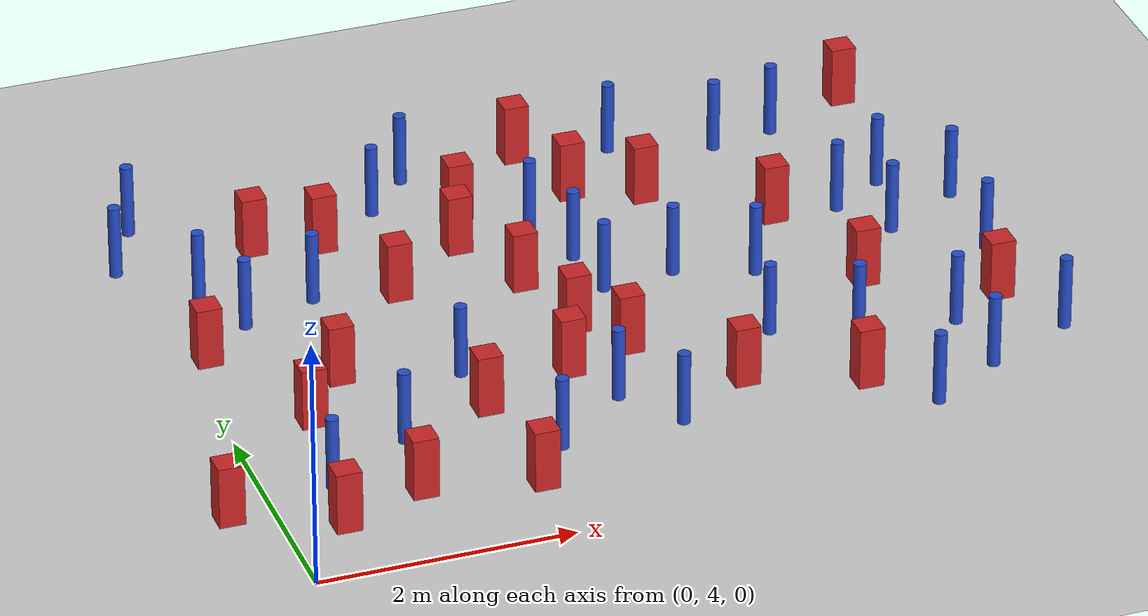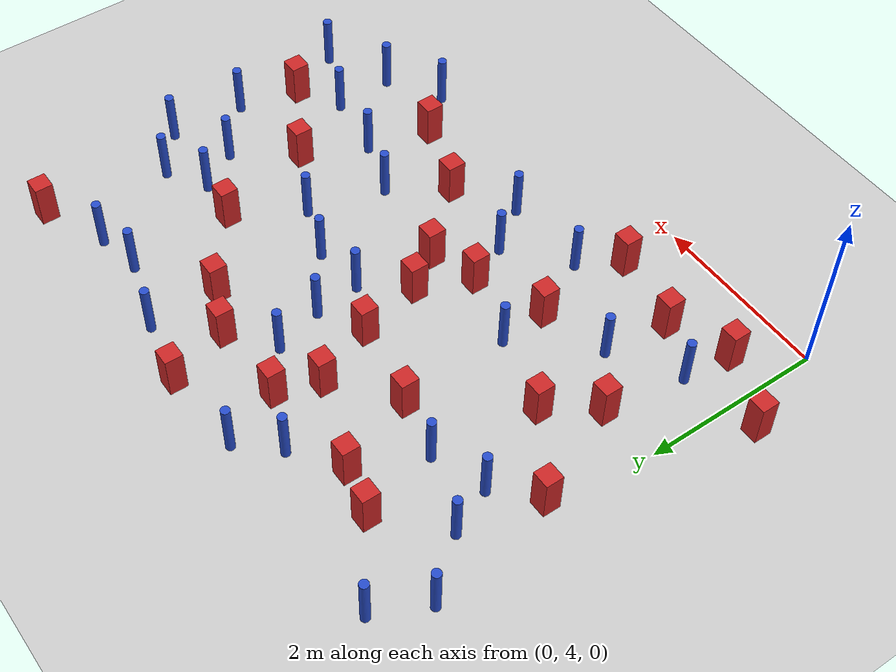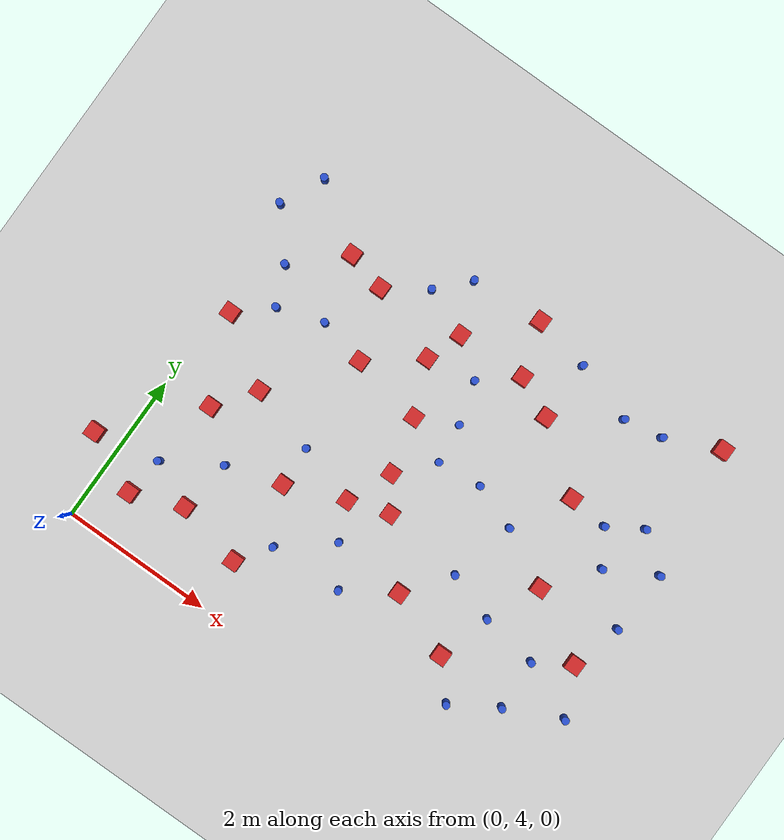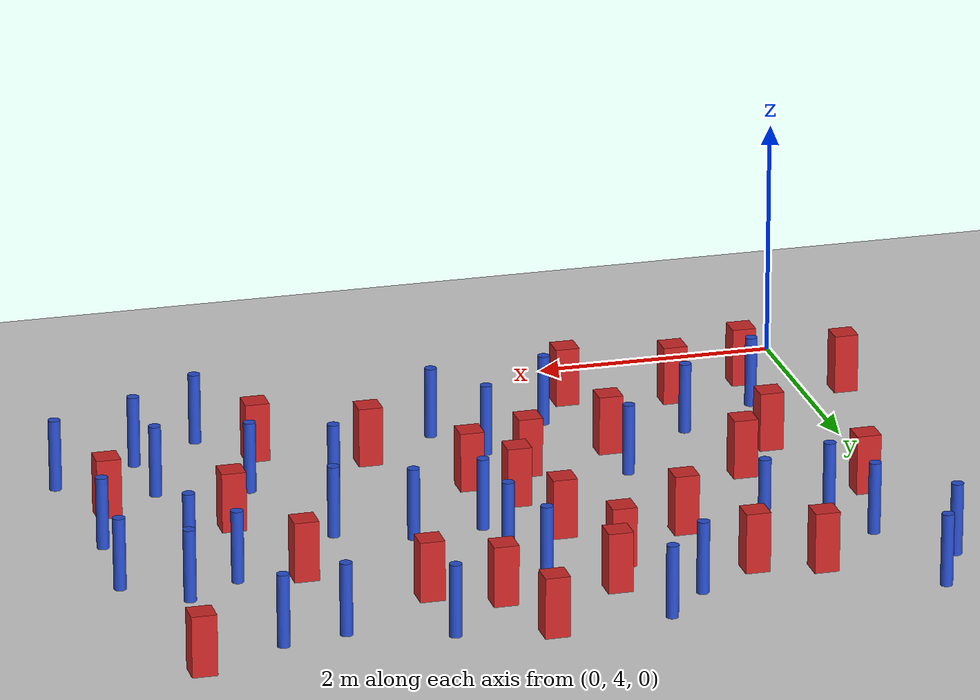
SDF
<sdf version="1.6">
 <world name="default">
  <model name="ground_plane">
   <static>1</static>
   <link name="link">
    <collision name="collision">
     <geometry><plane><normal>0 0 1</normal><size>100 100</size></plane></geometry>
     <surface><friction><ode><mu>100</mu><mu2>50</mu2></ode></friction></surface>
    </collision>
    <visual name="visual">
     <cast_shadows>0</cast_shadows>
     <geometry><plane><normal>0 0 1</normal><size>100 100</size></plane></geometry>
     <material>
      <ambient>1.0 1.0 1.0 1.0</ambient>
      <diffuse>0.8 0.8 0.8 1.0</diffuse>
      <specular>0.01 0.01 0.01 1.000000</specular>
     </material>
    </visual>
   </link>
  </model>
  <model name="pole_obstacle5">
   <static>true</static>
   <pose>5.40202079288 9.03838742741 -3.09024884793e-07 -7.19054271912e-07 -2.1131507513e-07 -1.93935509261e-07</pose>
   <link name="link">
    <pose>0 0 0.3 0 -0 0</pose>
    <inertial>
     <mass>1</mass>
     <inertia><ixx>0.145833</ixx><ixy>0</ixy><ixz>0</ixz><iyy>0.145833</iyy><iyz>0</iyz><izz>0.125</izz></inertia>
    </inertial>
    <collision name="collision">
     <geometry><cylinder><radius>0.05</radius><length>.6</length></cylinder></geometry>
    </collision>
    <visual name="visual">
     <geometry><cylinder><radius>0.05</radius><length>.6</length></cylinder></geometry>
     <material>
      <script><name>Gazebo/Blue</name><uri>file://media/materials/scripts/gazebo.material</uri></script>
     </material>
    </visual>
   </link>
  </model>
  <model name="square_post_obstacle2">
   <static>true</static>
   <pose>2.76552390389 7.45697668881 -4.36207812815e-07 3.75137919937e-06 9.77721102514e-07 2.47381364184e-05</pose>
   <link name="link">
    <pose>0 0 0.25 0 -0 0</pose>
    <inertial>
     <mass>100</mass>
     <inertia>
      <ixx>0.166667</ixx>
      <ixy>0</ixy>
      <ixz>0</ixz>
      <iyy>0.166667</iyy>
      <iyz>0</iyz>
      <izz>0.166667</izz>
     </inertia>
    </inertial>
    <collision name="collision"><geometry><box><size>.2 .2 .5</size></box></geometry></collision>
    <visual name="visual">
     <geometry><box><size>.2 .2 .5</size></box></geometry>
     <material>
      <script><name>Gazebo/Red</name><uri>file://media/materials/scripts/gazebo.material</uri></script>
     </material>
    </visual>
   </link>
  </model>
  <model name="pole_obstacle17">
   <static>true</static>
   <pose>5.89942514941 7.99826392989 -3.09024884793e-07 -7.19054271912e-07 -2.11315075134e-07 -1.93935509264e-07</pose>
   <link name="link">
    <pose>0 0 0.3 0 -0 0</pose>
    <inertial>
     <mass>1</mass>
     <inertia><ixx>0.145833</ixx><ixy>0</ixy><ixz>0</ixz><iyy>0.145833</iyy><iyz>0</iyz><izz>0.125</izz></inertia>
    </inertial>
    <collision name="collision">
     <geometry><cylinder><radius>0.05</radius><length>.6</length></cylinder></geometry>
    </collision>
    <visual name="visual">
     <geometry><cylinder><radius>0.05</radius><length>.6</length></cylinder></geometry>
     <material>
      <script><name>Gazebo/Blue</name><uri>file://media/materials/scripts/gazebo.material</uri></script>
     </material>
    </visual>
   </link>
  </model>
  <model name="pole_obstacle29">
   <static>true</static>
   <pose>4.88797072399 8.94769967864 -3.09024884793e-07 -7.19054271912e-07 -2.1131507513e-07 -1.93935509261e-07</pose>
   <link name="link">
    <pose>0 0 0.3 0 -0 0</pose>
    <inertial>
     <mass>1</mass>
     <inertia><ixx>0.145833</ixx><ixy>0</ixy><ixz>0</ixz><iyy>0.145833</iyy><iyz>0</iyz><izz>0.125</izz></inertia>
    </inertial>
    <collision name="collision">
     <geometry><cylinder><radius>0.05</radius><length>.6</length></cylinder></geometry>
    </collision>
    <visual name="visual">
     <geometry><cylinder><radius>0.05</radius><length>.6</length></cylinder></geometry>
     <material>
      <script><name>Gazebo/Blue</name><uri>file://media/materials/scripts/gazebo.material</uri></script>
     </material>
    </visual>
   </link>
  </model>
  <model name="square_post_obstacle22">
   <static>true</static>
   <pose>-0.342870952703 5.01672685426 -4.36207812815e-07 3.75137919937e-06 9.77721102514e-07 2.47381364184e-05</pose>
   <link name="link">
    <pose>0 0 0.25 0 -0 0</pose>
    <inertial>
     <mass>100</mass>
     <inertia>
      <ixx>0.166667</ixx>
      <ixy>0</ixy>
      <ixz>0</ixz>
      <iyy>0.166667</iyy>
      <iyz>0</iyz>
      <izz>0.166667</izz>
     </inertia>
    </inertial>
    <collision name="collision"><geometry><box><size>.2 .2 .5</size></box></geometry></collision>
    <visual name="visual">
     <geometry><box><size>.2 .2 .5</size></box></geometry>
     <material>
      <script><name>Gazebo/Red</name><uri>file://media/materials/scripts/gazebo.material</uri></script>
     </material>
    </visual>
   </link>
  </model>
  <model name="square_post_obstacle23">
   <static>true</static>
   <pose>1.98374936314 4.71340859326 -4.36207812815e-07 3.75137919937e-06 9.77721102514e-07 2.47381364184e-05</pose>
   <link name="link">
    <pose>0 0 0.25 0 -0 0</pose>
    <inertial>
     <mass>100</mass>
     <inertia>
      <ixx>0.166667</ixx>
      <ixy>0</ixy>
      <ixz>0</ixz>
      <iyy>0.166667</iyy>
      <iyz>0</iyz>
      <izz>0.166667</izz>
     </inertia>
    </inertial>
    <collision name="collision"><geometry><box><size>.2 .2 .5</size></box></geometry></collision>
    <visual name="visual">
     <geometry><box><size>.2 .2 .5</size></box></geometry>
     <material>
      <script><name>Gazebo/Red</name><uri>file://media/materials/scripts/gazebo.material</uri></script>
     </material>
    </visual>
   </link>
  </model>
  <model name="pole_obstacle32">
   <static>true</static>
   <pose>2.90803984438 5.65875958185 -3.09024884793e-07 -7.19054271912e-07 -2.11315075134e-07 -1.93935509266e-07</pose>
   <link name="link">
    <pose>0 0 0.3 0 -0 0</pose>
    <inertial>
     <mass>1</mass>
     <inertia><ixx>0.145833</ixx><ixy>0</ixy><ixz>0</ixz><iyy>0.145833</iyy><iyz>0</iyz><izz>0.125</izz></inertia>
    </inertial>
    <collision name="collision">
     <geometry><cylinder><radius>0.05</radius><length>.6</length></cylinder></geometry>
    </collision>
    <visual name="visual">
     <geometry><cylinder><radius>0.05</radius><length>.6</length></cylinder></geometry>
     <material>
      <script><name>Gazebo/Blue</name><uri>file://media/materials/scripts/gazebo.material</uri></script>
     </material>
    </visual>
   </link>
  </model>
  <model name="square_post_obstacle29">
   <static>true</static>
   <pose>3.34498067184 9.33578121504 -4.36207812815e-07 3.75137919937e-06 9.77721102514e-07 2.47381364184e-05</pose>
   <link name="link">
    <pose>0 0 0.25 0 -0 0</pose>
    <inertial>
     <mass>100</mass>
     <inertia>
      <ixx>0.166667</ixx>
      <ixy>0</ixy>
      <ixz>0</ixz>
      <iyy>0.166667</iyy>
      <iyz>0</iyz>
      <izz>0.166667</izz>
     </inertia>
    </inertial>
    <collision name="collision"><geometry><box><size>.2 .2 .5</size></box></geometry></collision>
    <visual name="visual">
     <geometry><box><size>.2 .2 .5</size></box></geometry>
     <material>
      <script><name>Gazebo/Red</name><uri>file://media/materials/scripts/gazebo.material</uri></script>
     </material>
    </visual>
   </link>
  </model>
  <model name="pole_obstacle35">
   <static>true</static>
   <pose>4.30914920771 6.16685141529 -3.09024884793e-07 -7.19054271911e-07 -2.1131507516e-07 -1.93935509277e-07</pose>
   <link name="link">
    <pose>0 0 0.3 0 -0 0</pose>
    <inertial>
     <mass>1</mass>
     <inertia><ixx>0.145833</ixx><ixy>0</ixy><ixz>0</ixz><iyy>0.145833</iyy><iyz>0</iyz><izz>0.125</izz></inertia>
    </inertial>
    <collision name="collision">
     <geometry><cylinder><radius>0.05</radius><length>.6</length></cylinder></geometry>
    </collision>
    <visual name="visual">
     <geometry><cylinder><radius>0.05</radius><length>.6</length></cylinder></geometry>
     <material>
      <script><name>Gazebo/Blue</name><uri>file://media/materials/scripts/gazebo.material</uri></script>
     </material>
    </visual>
   </link>
  </model>
  <model name="square_post_obstacle35">
   <static>true</static>
   <pose>1.49501717089 8.51546758001 -4.36207812815e-07 3.75137919937e-06 9.77721102514e-07 2.47381364184e-05</pose>
   <link name="link">
    <pose>0 0 0.25 0 -0 0</pose>
    <inertial>
     <mass>100</mass>
     <inertia>
      <ixx>0.166667</ixx>
      <ixy>0</ixy>
      <ixz>0</ixz>
      <iyy>0.166667</iyy>
      <iyz>0</iyz>
      <izz>0.166667</izz>
     </inertia>
    </inertial>
    <collision name="collision"><geometry><box><size>.2 .2 .5</size></box></geometry></collision>
    <visual name="visual">
     <geometry><box><size>.2 .2 .5</size></box></geometry>
     <material>
      <script><name>Gazebo/Red</name><uri>file://media/materials/scripts/gazebo.material</uri></script>
     </material>
    </visual>
   </link>
  </model>
  <model name="square_post_obstacle49">
   <static>true</static>
   <pose>4.09226031636 8.40933256699 -4.36207812815e-07 3.75137919937e-06 9.77721102514e-07 2.47381364184e-05</pose>
   <link name="link">
    <pose>0 0 0.25 0 -0 0</pose>
    <inertial>
     <mass>100</mass>
     <inertia>
      <ixx>0.166667</ixx>
      <ixy>0</ixy>
      <ixz>0</ixz>
      <iyy>0.166667</iyy>
      <iyz>0</iyz>
      <izz>0.166667</izz>
     </inertia>
    </inertial>
    <collision name="collision"><geometry><box><size>.2 .2 .5</size></box></geometry></collision>
    <visual name="visual">
     <geometry><box><size>.2 .2 .5</size></box></geometry>
     <material>
      <script><name>Gazebo/Red</name><uri>file://media/materials/scripts/gazebo.material</uri></script>
     </material>
    </visual>
   </link>
  </model>
  <model name="pole_obstacle65">
   <static>true</static>
   <pose>1.90484733759 6.36880593024 -3.09024884793e-07 -7.19054271912e-07 -2.11315075134e-07 -1.93935509265e-07</pose>
   <link name="link">
    <pose>0 0 0.3 0 -0 0</pose>
    <inertial>
     <mass>1</mass>
     <inertia><ixx>0.145833</ixx><ixy>0</ixy><ixz>0</ixz><iyy>0.145833</iyy><iyz>0</iyz><izz>0.125</izz></inertia>
    </inertial>
    <collision name="collision">
     <geometry><cylinder><radius>0.05</radius><length>.6</length></cylinder></geometry>
    </collision>
    <visual name="visual">
     <geometry><cylinder><radius>0.05</radius><length>.6</length></cylinder></geometry>
     <material>
      <script><name>Gazebo/Blue</name><uri>file://media/materials/scripts/gazebo.material</uri></script>
     </material>
    </visual>
   </link>
  </model>
  <model name="square_post_obstacle56">
   <static>true</static>
   <pose>3.22083216965 6.31313019133 -4.36207812815e-07 3.75137919937e-06 9.77721102514e-07 2.47381364184e-05</pose>
   <link name="link">
    <pose>0 0 0.25 0 -0 0</pose>
    <inertial>
     <mass>100</mass>
     <inertia>
      <ixx>0.166667</ixx>
      <ixy>0</ixy>
      <ixz>0</ixz>
      <iyy>0.166667</iyy>
      <iyz>0</iyz>
      <izz>0.166667</izz>
     </inertia>
    </inertial>
    <collision name="collision"><geometry><box><size>.2 .2 .5</size></box></geometry></collision>
    <visual name="visual">
     <geometry><box><size>.2 .2 .5</size></box></geometry>
     <material>
      <script><name>Gazebo/Red</name><uri>file://media/materials/scripts/gazebo.material</uri></script>
     </material>
    </visual>
   </link>
  </model>
  <model name="pole_obstacle82">
   <static>true</static>
   <pose>3.92170264534 7.2423098404 -3.09024884793e-07 -7.19054271912e-07 -2.11315075134e-07 -1.93935509266e-07</pose>
   <link name="link">
    <pose>0 0 0.3 0 -0 0</pose>
    <inertial>
     <mass>1</mass>
     <inertia><ixx>0.145833</ixx><ixy>0</ixy><ixz>0</ixz><iyy>0.145833</iyy><iyz>0</iyz><izz>0.125</izz></inertia>
    </inertial>
    <collision name="collision">
     <geometry><cylinder><radius>0.05</radius><length>.6</length></cylinder></geometry>
    </collision>
    <visual name="visual">
     <geometry><cylinder><radius>0.05</radius><length>.6</length></cylinder></geometry>
     <material>
      <script><name>Gazebo/Blue</name><uri>file://media/materials/scripts/gazebo.material</uri></script>
     </material>
    </visual>
   </link>
  </model>
  <model name="pole_obstacle86">
   <static>true</static>
   <pose>5.73516907541 5.16720957078 -3.09024884793e-07 -7.19054271911e-07 -2.1131507516e-07 -1.93935509277e-07</pose>
   <link name="link">
    <pose>0 0 0.3 0 -0 0</pose>
    <inertial>
     <mass>1</mass>
     <inertia><ixx>0.145833</ixx><ixy>0</ixy><ixz>0</ixz><iyy>0.145833</iyy><iyz>0</iyz><izz>0.125</izz></inertia>
    </inertial>
    <collision name="collision">
     <geometry><cylinder><radius>0.05</radius><length>.6</length></cylinder></geometry>
    </collision>
    <visual name="visual">
     <geometry><cylinder><radius>0.05</radius><length>.6</length></cylinder></geometry>
     <material>
      <script><name>Gazebo/Blue</name><uri>file://media/materials/scripts/gazebo.material</uri></script>
     </material>
    </visual>
   </link>
  </model>
  <model name="square_post_obstacle75">
   <static>true</static>
   <pose>0.972205063669 8.64678661419 -4.36207812815e-07 3.75137919937e-06 9.77721102514e-07 2.47381364184e-05</pose>
   <link name="link">
    <pose>0 0 0.25 0 -0 0</pose>
    <inertial>
     <mass>100</mass>
     <inertia>
      <ixx>0.166667</ixx>
      <ixy>0</ixy>
      <ixz>0</ixz>
      <iyy>0.166667</iyy>
      <iyz>0</iyz>
      <izz>0.166667</izz>
     </inertia>
    </inertial>
    <collision name="collision"><geometry><box><size>.2 .2 .5</size></box></geometry></collision>
    <visual name="visual">
     <geometry><box><size>.2 .2 .5</size></box></geometry>
     <material>
      <script><name>Gazebo/Red</name><uri>file://media/materials/scripts/gazebo.material</uri></script>
     </material>
    </visual>
   </link>
  </model>
  <model name="pole_obstacle95">
   <static>true</static>
   <pose>2.02218135866 8.86953108396 -3.09024884848e-07 -7.19054271903e-07 -2.11315075192e-07 -1.93935509282e-07</pose>
   <link name="link">
    <pose>0 0 0.3 0 -0 0</pose>
    <inertial>
     <mass>1</mass>
     <inertia><ixx>0.145833</ixx><ixy>0</ixy><ixz>0</ixz><iyy>0.145833</iyy><iyz>0</iyz><izz>0.125</izz></inertia>
    </inertial>
    <collision name="collision">
     <geometry><cylinder><radius>0.05</radius><length>.6</length></cylinder></geometry>
    </collision>
    <visual name="visual">
     <geometry><cylinder><radius>0.05</radius><length>.6</length></cylinder></geometry>
     <material>
      <script><name>Gazebo/Blue</name><uri>file://media/materials/scripts/gazebo.material</uri></script>
     </material>
    </visual>
   </link>
  </model>
  <model name="square_post_obstacle89">
   <static>true</static>
   <pose>0.639823635481 6.10207746877 -4.36207812815e-07 3.75137919937e-06 9.77721102514e-07 2.47381364184e-05</pose>
   <link name="link">
    <pose>0 0 0.25 0 -0 0</pose>
    <inertial>
     <mass>100</mass>
     <inertia>
      <ixx>0.166667</ixx>
      <ixy>0</ixy>
      <ixz>0</ixz>
      <iyy>0.166667</iyy>
      <iyz>0</iyz>
      <izz>0.166667</izz>
     </inertia>
    </inertial>
    <collision name="collision"><geometry><box><size>.2 .2 .5</size></box></geometry></collision>
    <visual name="visual">
     <geometry><box><size>.2 .2 .5</size></box></geometry>
     <material>
      <script><name>Gazebo/Red</name><uri>file://media/materials/scripts/gazebo.material</uri></script>
     </material>
    </visual>
   </link>
  </model>
  <model name="square_post_obstacle90">
   <static>true</static>
   <pose>4.74642654918 5.25686543556 -4.36207812815e-07 3.75137919937e-06 9.77721102514e-07 2.47381364184e-05</pose>
   <link name="link">
    <pose>0 0 0.25 0 -0 0</pose>
    <inertial>
     <mass>100</mass>
     <inertia>
      <ixx>0.166667</ixx>
      <ixy>0</ixy>
      <ixz>0</ixz>
      <iyy>0.166667</iyy>
      <iyz>0</iyz>
      <izz>0.166667</izz>
     </inertia>
    </inertial>
    <collision name="collision"><geometry><box><size>.2 .2 .5</size></box></geometry></collision>
    <visual name="visual">
     <geometry><box><size>.2 .2 .5</size></box></geometry>
     <material>
      <script><name>Gazebo/Red</name><uri>file://media/materials/scripts/gazebo.material</uri></script>
     </material>
    </visual>
   </link>
  </model>
  <model name="pole_obstacle100">
   <static>true</static>
   <pose>5.74465997507 7.28309472999 -3.09024884793e-07 -7.19054271911e-07 -2.1131507516e-07 -1.93935509277e-07</pose>
   <link name="link">
    <pose>0 0 0.3 0 -0 0</pose>
    <inertial>
     <mass>1</mass>
     <inertia><ixx>0.145833</ixx><ixy>0</ixy><ixz>0</ixz><iyy>0.145833</iyy><iyz>0</iyz><izz>0.125</izz></inertia>
    </inertial>
    <collision name="collision">
     <geometry><cylinder><radius>0.05</radius><length>.6</length></cylinder></geometry>
    </collision>
    <visual name="visual">
     <geometry><cylinder><radius>0.05</radius><length>.6</length></cylinder></geometry>
     <material>
      <script><name>Gazebo/Blue</name><uri>file://media/materials/scripts/gazebo.material</uri></script>
     </material>
    </visual>
   </link>
  </model>
  <model name="square_post_obstacle92">
   <static>true</static>
   <pose>1.92857918391 5.83791799095 -4.36207812815e-07 3.75137919937e-06 9.77721102514e-07 2.47381364184e-05</pose>
   <link name="link">
    <pose>0 0 0.25 0 -0 0</pose>
    <inertial>
     <mass>100</mass>
     <inertia>
      <ixx>0.166667</ixx>
      <ixy>0</ixy>
      <ixz>0</ixz>
      <iyy>0.166667</iyy>
      <iyz>0</iyz>
      <izz>0.166667</izz>
     </inertia>
    </inertial>
    <collision name="collision"><geometry><box><size>.2 .2 .5</size></box></geometry></collision>
    <visual name="visual">
     <geometry><box><size>.2 .2 .5</size></box></geometry>
     <material>
      <script><name>Gazebo/Red</name><uri>file://media/materials/scripts/gazebo.material</uri></script>
     </material>
    </visual>
   </link>
  </model>
  <model name="square_post_obstacle100">
   <static>true</static>
   <pose>2.47397392588 8.14726154813 -4.36207812815e-07 3.75137919937e-06 9.77721102514e-07 2.47381364184e-05</pose>
   <link name="link">
    <pose>0 0 0.25 0 -0 0</pose>
    <inertial>
     <mass>100</mass>
     <inertia>
      <ixx>0.166667</ixx>
      <ixy>0</ixy>
      <ixz>0</ixz>
      <iyy>0.166667</iyy>
      <iyz>0</iyz>
      <izz>0.166667</izz>
     </inertia>
    </inertial>
    <collision name="collision"><geometry><box><size>.2 .2 .5</size></box></geometry></collision>
    <visual name="visual">
     <geometry><box><size>.2 .2 .5</size></box></geometry>
     <material>
      <script><name>Gazebo/Red</name><uri>file://media/materials/scripts/gazebo.material</uri></script>
     </material>
    </visual>
   </link>
  </model>
  <model name="square_post_obstacle103">
   <static>true</static>
   <pose>1.01800037287 6.61711345415 -4.36207812815e-07 3.75137919937e-06 9.77721102514e-07 2.47381364184e-05</pose>
   <link name="link">
    <pose>0 0 0.25 0 -0 0</pose>
    <inertial>
     <mass>100</mass>
     <inertia>
      <ixx>0.166667</ixx>
      <ixy>0</ixy>
      <ixz>0</ixz>
      <iyy>0.166667</iyy>
      <iyz>0</iyz>
      <izz>0.166667</izz>
     </inertia>
    </inertial>
    <collision name="collision"><geometry><box><size>.2 .2 .5</size></box></geometry></collision>
    <visual name="visual">
     <geometry><box><size>.2 .2 .5</size></box></geometry>
     <material>
      <script><name>Gazebo/Red</name><uri>file://media/materials/scripts/gazebo.material</uri></script>
     </material>
    </visual>
   </link>
  </model>
  <model name="pole_obstacle123">
   <static>true</static>
   <pose>3.1099109982 8.25871919512 -3.09024884848e-07 -7.19054271902e-07 -2.11315075199e-07 -1.93935509286e-07</pose>
   <link name="link">
    <pose>0 0 0.3 0 -0 0</pose>
    <inertial>
     <mass>1</mass>
     <inertia><ixx>0.145833</ixx><ixy>0</ixy><ixz>0</ixz><iyy>0.145833</iyy><iyz>0</iyz><izz>0.125</izz></inertia>
    </inertial>
    <collision name="collision">
     <geometry><cylinder><radius>0.05</radius><length>.6</length></cylinder></geometry>
    </collision>
    <visual name="visual">
     <geometry><cylinder><radius>0.05</radius><length>.6</length></cylinder></geometry>
     <material>
      <script><name>Gazebo/Blue</name><uri>file://media/materials/scripts/gazebo.material</uri></script>
     </material>
    </visual>
   </link>
  </model>
  <model name="square_post_obstacle128">
   <static>true</static>
   <pose>2.94039911483 6.73059836863 -4.36207812815e-07 3.75137919937e-06 9.77721102514e-07 2.47381364184e-05</pose>
   <link name="link">
    <pose>0 0 0.25 0 -0 0</pose>
    <inertial>
     <mass>100</mass>
     <inertia>
      <ixx>0.166667</ixx>
      <ixy>0</ixy>
      <ixz>0</ixz>
      <iyy>0.166667</iyy>
      <iyz>0</iyz>
      <izz>0.166667</izz>
     </inertia>
    </inertial>
    <collision name="collision"><geometry><box><size>.2 .2 .5</size></box></geometry></collision>
    <visual name="visual">
     <geometry><box><size>.2 .2 .5</size></box></geometry>
     <material>
      <script><name>Gazebo/Red</name><uri>file://media/materials/scripts/gazebo.material</uri></script>
     </material>
    </visual>
   </link>
  </model>
  <model name="pole_obstacle134">
   <static>true</static>
   <pose>-0.121985685545 8.6433111115 -3.09024884793e-07 -7.19054271912e-07 -2.11315075151e-07 -1.93935509274e-07</pose>
   <link name="link">
    <pose>0 0 0.3 0 -0 0</pose>
    <inertial>
     <mass>1</mass>
     <inertia><ixx>0.145833</ixx><ixy>0</ixy><ixz>0</ixz><iyy>0.145833</iyy><iyz>0</iyz><izz>0.125</izz></inertia>
    </inertial>
    <collision name="collision">
     <geometry><cylinder><radius>0.05</radius><length>.6</length></cylinder></geometry>
    </collision>
    <visual name="visual">
     <geometry><cylinder><radius>0.05</radius><length>.6</length></cylinder></geometry>
     <material>
      <script><name>Gazebo/Blue</name><uri>file://media/materials/scripts/gazebo.material</uri></script>
     </material>
    </visual>
   </link>
  </model>
  <model name="pole_obstacle149">
   <static>true</static>
   <pose>6.33419612738 6.7889913198 -3.09024884793e-07 -7.19054271911e-07 -2.1131507516e-07 -1.93935509277e-07</pose>
   <link name="link">
    <pose>0 0 0.3 0 -0 0</pose>
    <inertial>
     <mass>1</mass>
     <inertia><ixx>0.145833</ixx><ixy>0</ixy><ixz>0</ixz><iyy>0.145833</iyy><iyz>0</iyz><izz>0.125</izz></inertia>
    </inertial>
    <collision name="collision">
     <geometry><cylinder><radius>0.05</radius><length>.6</length></cylinder></geometry>
    </collision>
    <visual name="visual">
     <geometry><cylinder><radius>0.05</radius><length>.6</length></cylinder></geometry>
     <material>
      <script><name>Gazebo/Blue</name><uri>file://media/materials/scripts/gazebo.material</uri></script>
     </material>
    </visual>
   </link>
  </model>
  <model name="pole_obstacle151">
   <static>true</static>
   <pose>3.33794769297 7.18365596386 -3.09024884793e-07 -7.19054271912e-07 -2.11315075134e-07 -1.93935509266e-07</pose>
   <link name="link">
    <pose>0 0 0.3 0 -0 0</pose>
    <inertial>
     <mass>1</mass>
     <inertia><ixx>0.145833</ixx><ixy>0</ixy><ixz>0</ixz><iyy>0.145833</iyy><iyz>0</iyz><izz>0.125</izz></inertia>
    </inertial>
    <collision name="collision">
     <geometry><cylinder><radius>0.05</radius><length>.6</length></cylinder></geometry>
    </collision>
    <visual name="visual">
     <geometry><cylinder><radius>0.05</radius><length>.6</length></cylinder></geometry>
     <material>
      <script><name>Gazebo/Blue</name><uri>file://media/materials/scripts/gazebo.material</uri></script>
     </material>
    </visual>
   </link>
  </model>
  <model name="pole_obstacle152">
   <static>true</static>
   <pose>0.509840751881 5.18065764088 -3.09024884793e-07 -7.19054271912e-07 -2.1131507513e-07 -1.93935509261e-07</pose>
   <link name="link">
    <pose>0 0 0.3 0 -0 0</pose>
    <inertial>
     <mass>1</mass>
     <inertia><ixx>0.145833</ixx><ixy>0</ixy><ixz>0</ixz><iyy>0.145833</iyy><iyz>0</iyz><izz>0.125</izz></inertia>
    </inertial>
    <collision name="collision">
     <geometry><cylinder><radius>0.05</radius><length>.6</length></cylinder></geometry>
    </collision>
    <visual name="visual">
     <geometry><cylinder><radius>0.05</radius><length>.6</length></cylinder></geometry>
     <material>
      <script><name>Gazebo/Blue</name><uri>file://media/materials/scripts/gazebo.material</uri></script>
     </material>
    </visual>
   </link>
  </model>
  <model name="square_post_obstacle149">
   <static>true</static>
   <pose>0.163116136232 7.19176770703 -4.36207812815e-07 3.75137919937e-06 9.77721102514e-07 2.47381364184e-05</pose>
   <link name="link">
    <pose>0 0 0.25 0 -0 0</pose>
    <inertial>
     <mass>100</mass>
     <inertia>
      <ixx>0.166667</ixx>
      <ixy>0</ixy>
      <ixz>0</ixz>
      <iyy>0.166667</iyy>
      <iyz>0</iyz>
      <izz>0.166667</izz>
     </inertia>
    </inertial>
    <collision name="collision"><geometry><box><size>.2 .2 .5</size></box></geometry></collision>
    <visual name="visual">
     <geometry><box><size>.2 .2 .5</size></box></geometry>
     <material>
      <script><name>Gazebo/Red</name><uri>file://media/materials/scripts/gazebo.material</uri></script>
     </material>
    </visual>
   </link>
  </model>
  <model name="pole_obstacle156">
   <static>true</static>
   <pose>3.24898072816 5.17183931778 -3.09024884793e-07 -7.19054271912e-07 -2.11315075134e-07 -1.93935509266e-07</pose>
   <link name="link">
    <pose>0 0 0.3 0 -0 0</pose>
    <inertial>
     <mass>1</mass>
     <inertia><ixx>0.145833</ixx><ixy>0</ixy><ixz>0</ixz><iyy>0.145833</iyy><iyz>0</iyz><izz>0.125</izz></inertia>
    </inertial>
    <collision name="collision">
     <geometry><cylinder><radius>0.05</radius><length>.6</length></cylinder></geometry>
    </collision>
    <visual name="visual">
     <geometry><cylinder><radius>0.05</radius><length>.6</length></cylinder></geometry>
     <material>
      <script><name>Gazebo/Blue</name><uri>file://media/materials/scripts/gazebo.material</uri></script>
     </material>
    </visual>
   </link>
  </model>
  <model name="pole_obstacle157">
   <static>true</static>
   <pose>0.146459374522 9.21261820631 -3.09024884793e-07 -7.19054271911e-07 -2.11315075164e-07 -1.93935509281e-07</pose>
   <link name="link">
    <pose>0 0 0.3 0 -0 0</pose>
    <inertial>
     <mass>1</mass>
     <inertia><ixx>0.145833</ixx><ixy>0</ixy><ixz>0</ixz><iyy>0.145833</iyy><iyz>0</iyz><izz>0.125</izz></inertia>
    </inertial>
    <collision name="collision">
     <geometry><cylinder><radius>0.05</radius><length>.6</length></cylinder></geometry>
    </collision>
    <visual name="visual">
     <geometry><cylinder><radius>0.05</radius><length>.6</length></cylinder></geometry>
     <material>
      <script><name>Gazebo/Blue</name><uri>file://media/materials/scripts/gazebo.material</uri></script>
     </material>
    </visual>
   </link>
  </model>
  <model name="pole_obstacle158">
   <static>true</static>
   <pose>1.20723097374 5.61263115958 -3.09024884793e-07 -7.19054271912e-07 -2.11315075134e-07 -1.93935509265e-07</pose>
   <link name="link">
    <pose>0 0 0.3 0 -0 0</pose>
    <inertial>
     <mass>1</mass>
     <inertia><ixx>0.145833</ixx><ixy>0</ixy><ixz>0</ixz><iyy>0.145833</iyy><iyz>0</iyz><izz>0.125</izz></inertia>
    </inertial>
    <collision name="collision">
     <geometry><cylinder><radius>0.05</radius><length>.6</length></cylinder></geometry>
    </collision>
    <visual name="visual">
     <geometry><cylinder><radius>0.05</radius><length>.6</length></cylinder></geometry>
     <material>
      <script><name>Gazebo/Blue</name><uri>file://media/materials/scripts/gazebo.material</uri></script>
     </material>
    </visual>
   </link>
  </model>
  <model name="pole_obstacle164">
   <static>true</static>
   <pose>6.37569528724 7.63112783322 -3.09024884793e-07 -7.19054271911e-07 -2.1131507516e-07 -1.93935509277e-07</pose>
   <link name="link">
    <pose>0 0 0.3 0 -0 0</pose>
    <inertial>
     <mass>1</mass>
     <inertia><ixx>0.145833</ixx><ixy>0</ixy><ixz>0</ixz><iyy>0.145833</iyy><iyz>0</iyz><izz>0.125</izz></inertia>
    </inertial>
    <collision name="collision">
     <geometry><cylinder><radius>0.05</radius><length>.6</length></cylinder></geometry>
    </collision>
    <visual name="visual">
     <geometry><cylinder><radius>0.05</radius><length>.6</length></cylinder></geometry>
     <material>
      <script><name>Gazebo/Blue</name><uri>file://media/materials/scripts/gazebo.material</uri></script>
     </material>
    </visual>
   </link>
  </model>
  <model name="square_post_obstacle155">
   <static>true</static>
   <pose>3.88049374974 5.58334117578 -4.36207812815e-07 3.75137919937e-06 9.77721102514e-07 2.47381364184e-05</pose>
   <link name="link">
    <pose>0 0 0.25 0 -0 0</pose>
    <inertial>
     <mass>100</mass>
     <inertia>
      <ixx>0.166667</ixx>
      <ixy>0</ixy>
      <ixz>0</ixz>
      <iyy>0.166667</iyy>
      <iyz>0</iyz>
      <izz>0.166667</izz>
     </inertia>
    </inertial>
    <collision name="collision"><geometry><box><size>.2 .2 .5</size></box></geometry></collision>
    <visual name="visual">
     <geometry><box><size>.2 .2 .5</size></box></geometry>
     <material>
      <script><name>Gazebo/Red</name><uri>file://media/materials/scripts/gazebo.material</uri></script>
     </material>
    </visual>
   </link>
  </model>
  <model name="square_post_obstacle156">
   <static>true</static>
   <pose>1.81377705612 7.63251789428 -4.36207812815e-07 3.75137919937e-06 9.77721102514e-07 2.47381364184e-05</pose>
   <link name="link">
    <pose>0 0 0.25 0 -0 0</pose>
    <inertial>
     <mass>100</mass>
     <inertia>
      <ixx>0.166667</ixx>
      <ixy>0</ixy>
      <ixz>0</ixz>
      <iyy>0.166667</iyy>
      <iyz>0</iyz>
      <izz>0.166667</izz>
     </inertia>
    </inertial>
    <collision name="collision"><geometry><box><size>.2 .2 .5</size></box></geometry></collision>
    <visual name="visual">
     <geometry><box><size>.2 .2 .5</size></box></geometry>
     <material>
      <script><name>Gazebo/Red</name><uri>file://media/materials/scripts/gazebo.material</uri></script>
     </material>
    </visual>
   </link>
  </model>
  <model name="square_post_obstacle158">
   <static>true</static>
   <pose>2.63969904302 8.61973768531 -4.36207812815e-07 3.75137919937e-06 9.77721102514e-07 2.47381364184e-05</pose>
   <link name="link">
    <pose>0 0 0.25 0 -0 0</pose>
    <inertial>
     <mass>100</mass>
     <inertia>
      <ixx>0.166667</ixx>
      <ixy>0</ixy>
      <ixz>0</ixz>
      <iyy>0.166667</iyy>
      <iyz>0</iyz>
      <izz>0.166667</izz>
     </inertia>
    </inertial>
    <collision name="collision"><geometry><box><size>.2 .2 .5</size></box></geometry></collision>
    <visual name="visual">
     <geometry><box><size>.2 .2 .5</size></box></geometry>
     <material>
      <script><name>Gazebo/Red</name><uri>file://media/materials/scripts/gazebo.material</uri></script>
     </material>
    </visual>
   </link>
  </model>
  <model name="pole_obstacle167">
   <static>true</static>
   <pose>2.28093270079 5.14150606322 -3.09024884793e-07 -7.19054271912e-07 -2.11315075134e-07 -1.93935509266e-07</pose>
   <link name="link">
    <pose>0 0 0.3 0 -0 0</pose>
    <inertial>
     <mass>1</mass>
     <inertia><ixx>0.145833</ixx><ixy>0</ixy><ixz>0</ixz><iyy>0.145833</iyy><iyz>0</iyz><izz>0.125</izz></inertia>
    </inertial>
    <collision name="collision">
     <geometry><cylinder><radius>0.05</radius><length>.6</length></cylinder></geometry>
    </collision>
    <visual name="visual">
     <geometry><cylinder><radius>0.05</radius><length>.6</length></cylinder></geometry>
     <material>
      <script><name>Gazebo/Blue</name><uri>file://media/materials/scripts/gazebo.material</uri></script>
     </material>
    </visual>
   </link>
  </model>
  <model name="square_post_obstacle167">
   <static>true</static>
   <pose>5.25994794638 6.64763430939 -4.36207812815e-07 3.75137919937e-06 9.77721102514e-07 2.47381364184e-05</pose>
   <link name="link">
    <pose>0 0 0.25 0 -0 0</pose>
    <inertial>
     <mass>100</mass>
     <inertia>
      <ixx>0.166667</ixx>
      <ixy>0</ixy>
      <ixz>0</ixz>
      <iyy>0.166667</iyy>
      <iyz>0</iyz>
      <izz>0.166667</izz>
     </inertia>
    </inertial>
    <collision name="collision"><geometry><box><size>.2 .2 .5</size></box></geometry></collision>
    <visual name="visual">
     <geometry><box><size>.2 .2 .5</size></box></geometry>
     <material>
      <script><name>Gazebo/Red</name><uri>file://media/materials/scripts/gazebo.material</uri></script>
     </material>
    </visual>
   </link>
  </model>
  <model name="square_post_obstacle168">
   <static>true</static>
   <pose>2.68977117417 6.14212573864 -4.36207812815e-07 3.75137919937e-06 9.77721102514e-07 2.47381364184e-05</pose>
   <link name="link">
    <pose>0 0 0.25 0 -0 0</pose>
    <inertial>
     <mass>100</mass>
     <inertia>
      <ixx>0.166667</ixx>
      <ixy>0</ixy>
      <ixz>0</ixz>
      <iyy>0.166667</iyy>
      <iyz>0</iyz>
      <izz>0.166667</izz>
     </inertia>
    </inertial>
    <collision name="collision"><geometry><box><size>.2 .2 .5</size></box></geometry></collision>
    <visual name="visual">
     <geometry><box><size>.2 .2 .5</size></box></geometry>
     <material>
      <script><name>Gazebo/Red</name><uri>file://media/materials/scripts/gazebo.material</uri></script>
     </material>
    </visual>
   </link>
  </model>
  <model name="square_post_obstacle169">
   <static>true</static>
   <pose>0.43749462666 4.65154801764 -4.36207812815e-07 3.75137919937e-06 9.77721102514e-07 2.47381364184e-05</pose>
   <link name="link">
    <pose>0 0 0.25 0 -0 0</pose>
    <inertial>
     <mass>100</mass>
     <inertia>
      <ixx>0.166667</ixx>
      <ixy>0</ixy>
      <ixz>0</ixz>
      <iyy>0.166667</iyy>
      <iyz>0</iyz>
      <izz>0.166667</izz>
     </inertia>
    </inertial>
    <collision name="collision"><geometry><box><size>.2 .2 .5</size></box></geometry></collision>
    <visual name="visual">
     <geometry><box><size>.2 .2 .5</size></box></geometry>
     <material>
      <script><name>Gazebo/Red</name><uri>file://media/materials/scripts/gazebo.material</uri></script>
     </material>
    </visual>
   </link>
  </model>
  <model name="pole_obstacle170">
   <static>true</static>
   <pose>5.70063148752 5.83495293783 -3.09024884793e-07 -7.19054271911e-07 -2.1131507516e-07 -1.93935509277e-07</pose>
   <link name="link">
    <pose>0 0 0.3 0 -0 0</pose>
    <inertial>
     <mass>1</mass>
     <inertia><ixx>0.145833</ixx><ixy>0</ixy><ixz>0</ixz><iyy>0.145833</iyy><iyz>0</iyz><izz>0.125</izz></inertia>
    </inertial>
    <collision name="collision">
     <geometry><cylinder><radius>0.05</radius><length>.6</length></cylinder></geometry>
    </collision>
    <visual name="visual">
     <geometry><cylinder><radius>0.05</radius><length>.6</length></cylinder></geometry>
     <material>
      <script><name>Gazebo/Blue</name><uri>file://media/materials/scripts/gazebo.material</uri></script>
     </material>
    </visual>
   </link>
  </model>
  <model name="pole_obstacle179">
   <static>true</static>
   <pose>1.18592191147 7.76659024727 -3.09024884793e-07 -7.19054271912e-07 -2.11315075134e-07 -1.93935509265e-07</pose>
   <link name="link">
    <pose>0 0 0.3 0 -0 0</pose>
    <inertial>
     <mass>1</mass>
     <inertia><ixx>0.145833</ixx><ixy>0</ixy><ixz>0</ixz><iyy>0.145833</iyy><iyz>0</iyz><izz>0.125</izz></inertia>
    </inertial>
    <collision name="collision">
     <geometry><cylinder><radius>0.05</radius><length>.6</length></cylinder></geometry>
    </collision>
    <visual name="visual">
     <geometry><cylinder><radius>0.05</radius><length>.6</length></cylinder></geometry>
     <material>
      <script><name>Gazebo/Blue</name><uri>file://media/materials/scripts/gazebo.material</uri></script>
     </material>
    </visual>
   </link>
  </model>
  <model name="square_post_obstacle175">
   <static>true</static>
   <pose>6.1580694259 6.12211567352 -4.36207812815e-07 3.75137919937e-06 9.77721102514e-07 2.47381364184e-05</pose>
   <link name="link">
    <pose>0 0 0.25 0 -0 0</pose>
    <inertial>
     <mass>100</mass>
     <inertia>
      <ixx>0.166667</ixx>
      <ixy>0</ixy>
      <ixz>0</ixz>
      <iyy>0.166667</iyy>
      <iyz>0</iyz>
      <izz>0.166667</izz>
     </inertia>
    </inertial>
    <collision name="collision"><geometry><box><size>.2 .2 .5</size></box></geometry></collision>
    <visual name="visual">
     <geometry><box><size>.2 .2 .5</size></box></geometry>
     <material>
      <script><name>Gazebo/Red</name><uri>file://media/materials/scripts/gazebo.material</uri></script>
     </material>
    </visual>
   </link>
  </model>
  <model name="pole_obstacle181">
   <static>true</static>
   <pose>4.51973441356 7.02972629238 -3.09024884793e-07 -7.19054271911e-07 -2.1131507516e-07 -1.93935509277e-07</pose>
   <link name="link">
    <pose>0 0 0.3 0 -0 0</pose>
    <inertial>
     <mass>1</mass>
     <inertia><ixx>0.145833</ixx><ixy>0</ixy><ixz>0</ixz><iyy>0.145833</iyy><iyz>0</iyz><izz>0.125</izz></inertia>
    </inertial>
    <collision name="collision">
     <geometry><cylinder><radius>0.05</radius><length>.6</length></cylinder></geometry>
    </collision>
    <visual name="visual">
     <geometry><cylinder><radius>0.05</radius><length>.6</length></cylinder></geometry>
     <material>
      <script><name>Gazebo/Blue</name><uri>file://media/materials/scripts/gazebo.material</uri></script>
     </material>
    </visual>
   </link>
  </model>
  <model name="square_post_obstacle184">
   <static>true</static>
   <pose>4.93973148928 7.77698678248 -4.36207812815e-07 3.75137919937e-06 9.77721102514e-07 2.47381364184e-05</pose>
   <link name="link">
    <pose>0 0 0.25 0 -0 0</pose>
    <inertial>
     <mass>100</mass>
     <inertia>
      <ixx>0.166667</ixx>
      <ixy>0</ixy>
      <ixz>0</ixz>
      <iyy>0.166667</iyy>
      <iyz>0</iyz>
      <izz>0.166667</izz>
     </inertia>
    </inertial>
    <collision name="collision"><geometry><box><size>.2 .2 .5</size></box></geometry></collision>
    <visual name="visual">
     <geometry><box><size>.2 .2 .5</size></box></geometry>
     <material>
      <script><name>Gazebo/Red</name><uri>file://media/materials/scripts/gazebo.material</uri></script>
     </material>
    </visual>
   </link>
  </model>
  <model name="square_post_obstacle191">
   <static>true</static>
   <pose>6.10825499507 9.35131389538 -4.36207812815e-07 3.75137919937e-06 9.77721102514e-07 2.47381364184e-05</pose>
   <link name="link">
    <pose>0 0 0.25 0 -0 0</pose>
    <inertial>
     <mass>100</mass>
     <inertia>
      <ixx>0.166667</ixx>
      <ixy>0</ixy>
      <ixz>0</ixz>
      <iyy>0.166667</iyy>
      <iyz>0</iyz>
      <izz>0.166667</izz>
     </inertia>
    </inertial>
    <collision name="collision"><geometry><box><size>.2 .2 .5</size></box></geometry></collision>
    <visual name="visual">
     <geometry><box><size>.2 .2 .5</size></box></geometry>
     <material>
      <script><name>Gazebo/Red</name><uri>file://media/materials/scripts/gazebo.material</uri></script>
     </material>
    </visual>
   </link>
  </model>
  <model name="pole_obstacle195">
   <static>true</static>
   <pose>4.08744800119 9.1897917006 -3.09024884793e-07 -7.19054271912e-07 -2.1131507513e-07 -1.93935509261e-07</pose>
   <link name="link">
    <pose>0 0 0.3 0 -0 0</pose>
    <inertial>
     <mass>1</mass>
     <inertia><ixx>0.145833</ixx><ixy>0</ixy><ixz>0</ixz><iyy>0.145833</iyy><iyz>0</iyz><izz>0.125</izz></inertia>
    </inertial>
    <collision name="collision">
     <geometry><cylinder><radius>0.05</radius><length>.6</length></cylinder></geometry>
    </collision>
    <visual name="visual">
     <geometry><cylinder><radius>0.05</radius><length>.6</length></cylinder></geometry>
     <material>
      <script><name>Gazebo/Blue</name><uri>file://media/materials/scripts/gazebo.material</uri></script>
     </material>
    </visual>
   </link>
  </model>
  <model name="pole_obstacle196">
   <static>true</static>
   <pose>3.27359074291 7.70535342793 -3.09024884793e-07 -7.19054271912e-07 -2.11315075134e-07 -1.93935509266e-07</pose>
   <link name="link">
    <pose>0 0 0.3 0 -0 0</pose>
    <inertial>
     <mass>1</mass>
     <inertia><ixx>0.145833</ixx><ixy>0</ixy><ixz>0</ixz><iyy>0.145833</iyy><iyz>0</iyz><izz>0.125</izz></inertia>
    </inertial>
    <collision name="collision">
     <geometry><cylinder><radius>0.05</radius><length>.6</length></cylinder></geometry>
    </collision>
    <visual name="visual">
     <geometry><cylinder><radius>0.05</radius><length>.6</length></cylinder></geometry>
     <material>
      <script><name>Gazebo/Blue</name><uri>file://media/materials/scripts/gazebo.material</uri></script>
     </material>
    </visual>
   </link>
  </model>
  <model name="pole_obstacle198">
   <static>true</static>
   <pose>0.367760024601 8.06513423766 -3.09024884793e-07 -7.19054271911e-07 -2.11315075166e-07 -1.93935509282e-07</pose>
   <link name="link">
    <pose>0 0 0.3 0 -0 0</pose>
    <inertial>
     <mass>1</mass>
     <inertia><ixx>0.145833</ixx><ixy>0</ixy><ixz>0</ixz><iyy>0.145833</iyy><iyz>0</iyz><izz>0.125</izz></inertia>
    </inertial>
    <collision name="collision">
     <geometry><cylinder><radius>0.05</radius><length>.6</length></cylinder></geometry>
    </collision>
    <visual name="visual">
     <geometry><cylinder><radius>0.05</radius><length>.6</length></cylinder></geometry>
     <material>
      <script><name>Gazebo/Blue</name><uri>file://media/materials/scripts/gazebo.material</uri></script>
     </material>
    </visual>
   </link>
  </model>
  <model name="pole_obstacle199">
   <static>true</static>
   <pose>5.14874403471 4.80494927208 -3.09024884793e-07 -7.19054271911e-07 -2.1131507516e-07 -1.93935509277e-07</pose>
   <link name="link">
    <pose>0 0 0.3 0 -0 0</pose>
    <inertial>
     <mass>1</mass>
     <inertia><ixx>0.145833</ixx><ixy>0</ixy><ixz>0</ixz><iyy>0.145833</iyy><iyz>0</iyz><izz>0.125</izz></inertia>
    </inertial>
    <collision name="collision">
     <geometry><cylinder><radius>0.05</radius><length>.6</length></cylinder></geometry>
    </collision>
    <visual name="visual">
     <geometry><cylinder><radius>0.05</radius><length>.6</length></cylinder></geometry>
     <material>
      <script><name>Gazebo/Blue</name><uri>file://media/materials/scripts/gazebo.material</uri></script>
     </material>
    </visual>
   </link>
  </model>
  <model name="pole_obstacle207">
   <static>true</static>
   <pose>6.45235989716 5.50235025728 -3.09024884793e-07 -7.19054271911e-07 -2.1131507516e-07 -1.93935509277e-07</pose>
   <link name="link">
    <pose>0 0 0.3 0 -0 0</pose>
    <inertial>
     <mass>1</mass>
     <inertia><ixx>0.145833</ixx><ixy>0</ixy><ixz>0</ixz><iyy>0.145833</iyy><iyz>0</iyz><izz>0.125</izz></inertia>
    </inertial>
    <collision name="collision">
     <geometry><cylinder><radius>0.05</radius><length>.6</length></cylinder></geometry>
    </collision>
    <visual name="visual">
     <geometry><cylinder><radius>0.05</radius><length>.6</length></cylinder></geometry>
     <material>
      <script><name>Gazebo/Blue</name><uri>file://media/materials/scripts/gazebo.material</uri></script>
     </material>
    </visual>
   </link>
  </model>
  <model name="pole_obstacle214">
   <static>true</static>
   <pose>4.95043689917 5.95185812792 -3.09024884793e-07 -7.19054271911e-07 -2.1131507516e-07 -1.93935509277e-07</pose>
   <link name="link">
    <pose>0 0 0.3 0 -0 0</pose>
    <inertial>
     <mass>1</mass>
     <inertia><ixx>0.145833</ixx><ixy>0</ixy><ixz>0</ixz><iyy>0.145833</iyy><iyz>0</iyz><izz>0.125</izz></inertia>
    </inertial>
    <collision name="collision">
     <geometry><cylinder><radius>0.05</radius><length>.6</length></cylinder></geometry>
    </collision>
    <visual name="visual">
     <geometry><cylinder><radius>0.05</radius><length>.6</length></cylinder></geometry>
     <material>
      <script><name>Gazebo/Blue</name><uri>file://media/materials/scripts/gazebo.material</uri></script>
     </material>
    </visual>
   </link>
  </model>
  <model name="pole_obstacle215">
   <static>true</static>
   <pose>2.38531753131 9.26432937272 -3.09024884848e-07 -7.19054271902e-07 -2.11315075199e-07 -1.93935509286e-07</pose>
   <link name="link">
    <pose>0 0 0.3 0 -0 0</pose>
    <inertial>
     <mass>1</mass>
     <inertia><ixx>0.145833</ixx><ixy>0</ixy><ixz>0</ixz><iyy>0.145833</iyy><iyz>0</iyz><izz>0.125</izz></inertia>
    </inertial>
    <collision name="collision">
     <geometry><cylinder><radius>0.05</radius><length>.6</length></cylinder></geometry>
    </collision>
    <visual name="visual">
     <geometry><cylinder><radius>0.05</radius><length>.6</length></cylinder></geometry>
     <material>
      <script><name>Gazebo/Blue</name><uri>file://media/materials/scripts/gazebo.material</uri></script>
     </material>
    </visual>
   </link>
  </model>
  <model name="square_post_obstacle227">
   <static>true</static>
   <pose>1.1089200552 4.90282997467 -4.36207812815e-07 3.75137919937e-06 9.77721102514e-07 2.47381364184e-05</pose>
   <link name="link">
    <pose>0 0 0.25 0 -0 0</pose>
    <inertial>
     <mass>100</mass>
     <inertia>
      <ixx>0.166667</ixx>
      <ixy>0</ixy>
      <ixz>0</ixz>
      <iyy>0.166667</iyy>
      <iyz>0</iyz>
      <izz>0.166667</izz>
     </inertia>
    </inertial>
    <collision name="collision"><geometry><box><size>.2 .2 .5</size></box></geometry></collision>
    <visual name="visual">
     <geometry><box><size>.2 .2 .5</size></box></geometry>
     <material>
      <script><name>Gazebo/Red</name><uri>file://media/materials/scripts/gazebo.material</uri></script>
     </material>
    </visual>
   </link>
  </model>
  <model name="square_post_obstacle230">
   <static>true</static>
   <pose>3.5649700552 8.64573997467 -4.36207812815e-07 3.75137919937e-06 9.77721102514e-07 2.47381364184e-05</pose>
   <link name="link">
    <pose>0 0 0.25 0 -0 0</pose>
    <inertial>
     <mass>100</mass>
     <inertia>
      <ixx>0.166667</ixx>
      <ixy>0</ixy>
      <ixz>0</ixz>
      <iyy>0.166667</iyy>
      <iyz>0</iyz>
      <izz>0.166667</izz>
     </inertia>
    </inertial>
    <collision name="collision"><geometry><box><size>.2 .2 .5</size></box></geometry></collision>
    <visual name="visual">
     <geometry><box><size>.2 .2 .5</size></box></geometry>
     <material>
      <script><name>Gazebo/Red</name><uri>file://media/materials/scripts/gazebo.material</uri></script>
     </material>
    </visual>
   </link>
  </model>
  <model name="pole_obstacle220">
   <static>true</static>
   <pose>5.45979000976 7.72890002078 -3.09024884793e-07 -7.19054271911e-07 -2.1131507516e-07 -1.93935509277e-07</pose>
   <link name="link">
    <pose>0 0 0.3 0 -0 0</pose>
    <inertial>
     <mass>1</mass>
     <inertia><ixx>0.145833</ixx><ixy>0</ixy><ixz>0</ixz><iyy>0.145833</iyy><iyz>0</iyz><izz>0.125</izz></inertia>
    </inertial>
    <collision name="collision">
     <geometry><cylinder><radius>0.05</radius><length>.6</length></cylinder></geometry>
    </collision>
    <visual name="visual">
     <geometry><cylinder><radius>0.05</radius><length>.6</length></cylinder></geometry>
     <material>
      <script><name>Gazebo/Blue</name><uri>file://media/materials/scripts/gazebo.material</uri></script>
     </material>
    </visual>
   </link>
  </model>
  <model name="pole_obstacle221">
   <static>true</static>
   <pose>0.585906009761 7.57032002078 -3.09024884793e-07 -7.19054271912e-07 -2.11315075129e-07 -1.93935509261e-07</pose>
   <link name="link">
    <pose>0 0 0.3 0 -0 0</pose>
    <inertial>
     <mass>1</mass>
     <inertia><ixx>0.145833</ixx><ixy>0</ixy><ixz>0</ixz><iyy>0.145833</iyy><iyz>0</iyz><izz>0.125</izz></inertia>
    </inertial>
    <collision name="collision">
     <geometry><cylinder><radius>0.05</radius><length>.6</length></cylinder></geometry>
    </collision>
    <visual name="visual">
     <geometry><cylinder><radius>0.05</radius><length>.6</length></cylinder></geometry>
     <material>
      <script><name>Gazebo/Blue</name><uri>file://media/materials/scripts/gazebo.material</uri></script>
     </material>
    </visual>
   </link>
  </model>
 </world>
</sdf>
